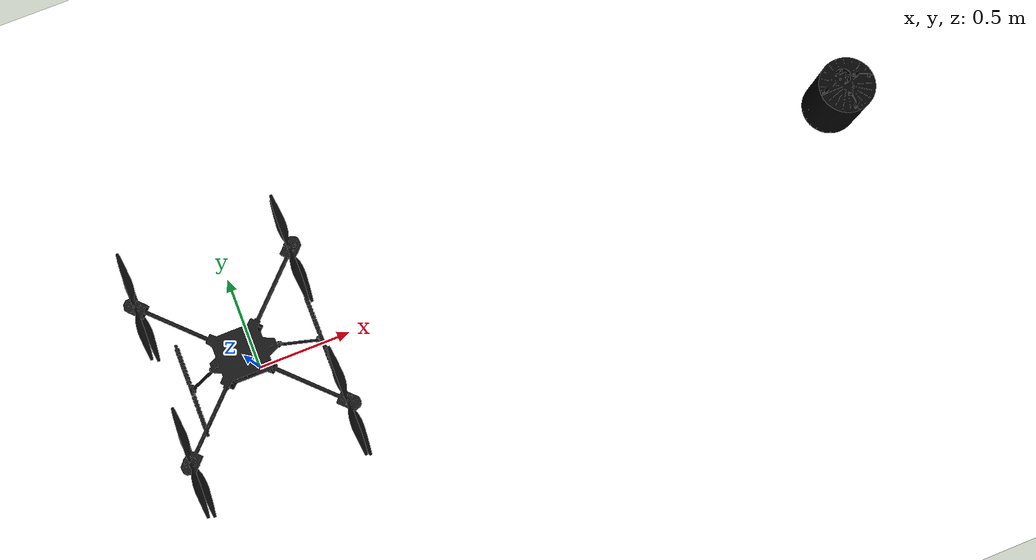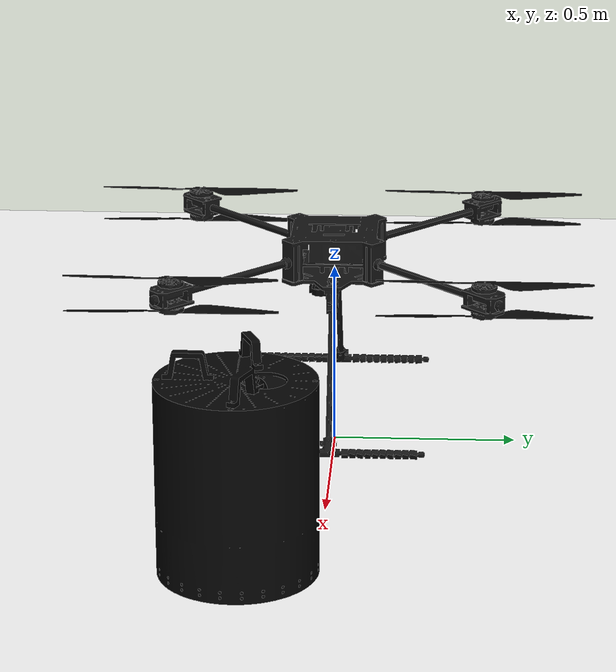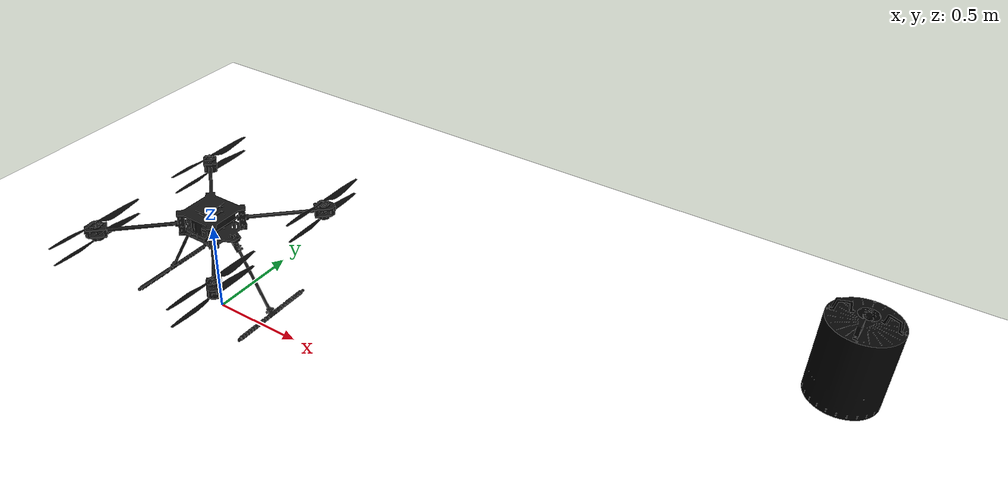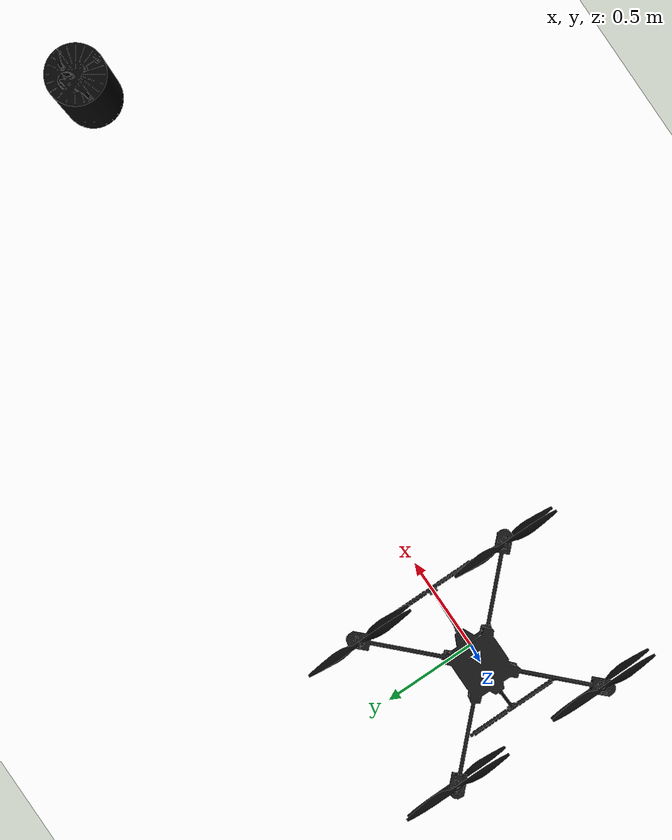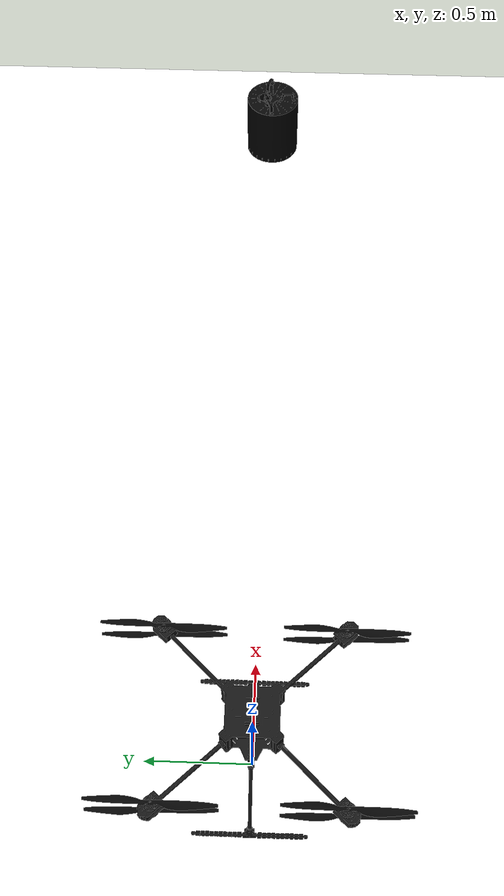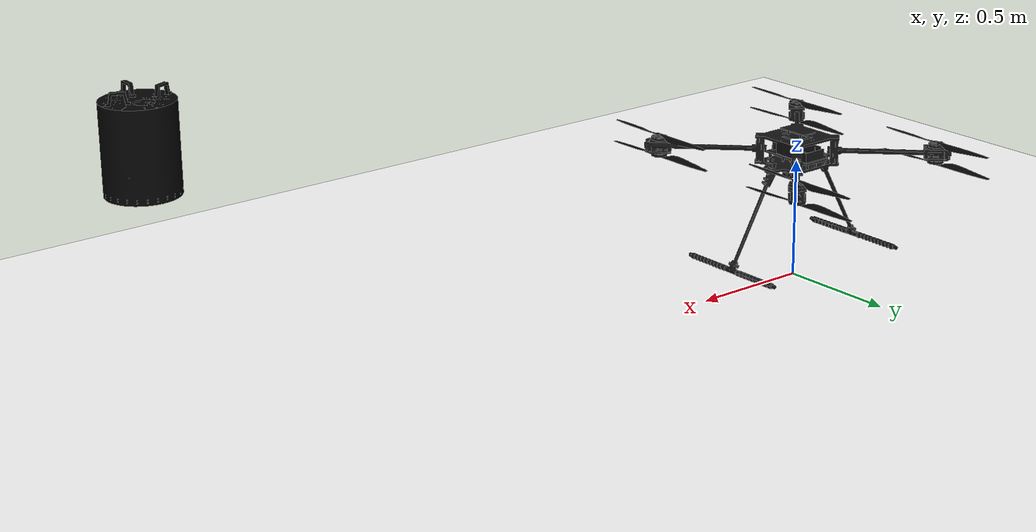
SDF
<?xml version="1.0" ?>
<sdf version="1.9">
  <world name="iris_runway">
    <physics name="1ms" type="ignore">
      <max_step_size>0.001</max_step_size>
      <real_time_factor>1.0</real_time_factor>
    </physics>

    <plugin filename="gz-sim-physics-system"
      name="gz::sim::systems::Physics">
    </plugin>
    <plugin
      filename="gz-sim-sensors-system"
      name="gz::sim::systems::Sensors">
      <render_engine>ogre2</render_engine>
    </plugin>
    <plugin filename="gz-sim-user-commands-system"
      name="gz::sim::systems::UserCommands">
    </plugin>
    <plugin filename="gz-sim-scene-broadcaster-system"
      name="gz::sim::systems::SceneBroadcaster">
    </plugin>
    <plugin filename="gz-sim-imu-system"
      name="gz::sim::systems::Imu">
    </plugin>
    <plugin filename="gz-sim-navsat-system"
      name="gz::sim::systems::NavSat">
    </plugin>

    <scene>
      <ambient>1.0 1.0 1.0</ambient>
      <background>0.8 0.8 0.8</background>
      <sky></sky>
    </scene>

    <spherical_coordinates>
      <latitude_deg>-35.363262</latitude_deg>
      <longitude_deg>149.165237</longitude_deg>
      <elevation>584</elevation>
      <heading_deg>0</heading_deg>
      <surface_model>EARTH_WGS84</surface_model>
    </spherical_coordinates>

    <light type="directional" name="sun">
      <cast_shadows>true</cast_shadows>
      <pose>0 0 10 0 0 0</pose>
      <diffuse>0.8 0.8 0.8 1</diffuse>
      <specular>0.8 0.8 0.8 1</specular>
      <attenuation>
        <range>1000</range>
        <constant>0.9</constant>
        <linear>0.01</linear>
        <quadratic>0.001</quadratic>
      </attenuation>
      <direction>-0.5 0.1 -0.9</direction>
    </light>

    <model name="axes">
      <static>1</static>
      <link name="link">
        <sensor name="navsat_sensor" type="navsat">
          <always_on>1</always_on>
          <update_rate>1</update_rate>
        </sensor>
      </link>
    </model>

    <!-- CHÃO DE GRAMA CUSTOMIZADO (Importado)      -->
    <include>
      <uri>model://grama</uri>
      <pose>0 0 0 0 0 0</pose>
    </include>

    <!-- ARMADILHA                                  -->

    <include>
      <uri>model://armadilha</uri>
      <pose>3 0 1.0 0 0 0</pose>
    </include>

    <!-- MEU DRONE                                  -->
    <include>
      <uri>model://drone_coaxial</uri>
      <pose>0 0 0.5 0 0 0</pose>
    </include>

  </world>
</sdf>

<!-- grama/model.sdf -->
<sdf version="1.9">
  <model name="chao_grama">
    <static>true</static>

    <link name="link">

      <collision name="collision">
        <geometry>
          <plane>
            <normal>0 0 1</normal>
            <size>1000 1000</size>
          </plane>
        </geometry>
        <surface>
          <friction>
            <ode>
              <mu>100</mu>
              <mu2>50</mu2>
            </ode>
          </friction>
        </surface>
      </collision>

      <visual name="visual">
        <pose>0 0 0 1.5708 0 0</pose>

        <geometry>
          <mesh>
            <uri>model://grama/grama.obj</uri>
          </mesh>
        </geometry>

        <material>
          <diffuse>1 1 1 1</diffuse>
          <pbr>
            <metal>
              <albedo_map>model://grama/color.jpg</albedo_map>
              <normal_map>model://grama/normal.png</normal_map>
              <roughness_map>model://grama/roughness.jpg</roughness_map>
            </metal>
          </pbr>
        </material>
      </visual>

    </link>
  </model>
</sdf>

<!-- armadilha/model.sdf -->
<sdf version="1.9">
  <model name="armadilha_alvo">
    <static>false</static>
    <link name="link">
      <inertial>
        <mass>4.81162</mass>
        <inertia>
          <ixx>0.294868</ixx><iyy>0.150069</iyy><izz>0.258855</izz>
          <ixy>0</ixy><ixz>0</ixz><iyz>0</iyz>
        </inertia>
      </inertial>

      <visual name="base_visual">
        <geometry>
          <mesh>
            <uri>model://armadilha/armadilha-corrigida-alcas.stl</uri>
            <scale>0.001 0.001 0.001</scale>
          </mesh>
        </geometry>
        <material>
          <ambient>0.015 0.015 0.015 1</ambient>
          <diffuse>0.02 0.02 0.02 1</diffuse>
          <specular>0.05 0.05 0.05 1</specular>
        </material>
      </visual>
      <collision name="base_collision">
        <geometry>
          <mesh>
            <uri>model://armadilha/armadilha-corrigida-alcas.stl</uri>
            <scale>0.001 0.001 0.001</scale>
          </mesh>
        </geometry>
        <surface>
          <friction><ode><mu>1.0</mu><mu2>1.0</mu2></ode></friction>
        </surface>
      </collision>
    </link>
  </model>
</sdf>

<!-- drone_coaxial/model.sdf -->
<sdf version="1.9">
  <model name="drone_coaxial">
    <pose>0 0 0.45 0 0 0</pose>

    <link name="base_link">
      <inertial>
        <pose>0 0 0 0 0 0</pose>
        <!-- Massa total: 6.300 kg da base + 8 rotores de 0.050 kg = 6.700 kg. -->
        <mass>6.30000</mass>
        <inertia>
          <ixx>0.903322</ixx><ixy>0</ixy><ixz>0</ixz>
          <iyy>0.903322</iyy><iyz>0</iyz><izz>1.569346</izz>
        </inertia>
      </inertial>

      <visual name="corpo_visual">
        <geometry>
          <mesh>
            <uri>model://drone_coaxial/meshes/montagem-drone-simplificado.stl</uri>
            <scale>0.001 0.001 0.001</scale>
          </mesh>
        </geometry>
        <material>
          <ambient>0.08 0.08 0.08 1</ambient>
          <diffuse>0.08 0.08 0.08 1</diffuse>
          <specular>0.1 0.1 0.1 1</specular>
        </material>
      </visual>

      <collision name="corpo_colisao">
        <geometry>
          <mesh>
            <uri>model://drone_coaxial/meshes/montagem-drone-simplificado.stl</uri>
            <scale>0.001 0.001 0.001</scale>
          </mesh>
        </geometry>
      </collision>

      <sensor name="imu_sensor" type="imu">
        <!-- O plugin ArduPilot usa corpo X-forward/Y-right/Z-down. -->
        <pose degrees="true">0 0 0 180 0 0</pose>
        <always_on>1</always_on>
        <update_rate>1000</update_rate>
      </sensor>
    </link>

    <!-- GIMBAL E CÂMERA SIYI A8 MINI (3 Eixos)         -->

    <!-- 1. Yaw Link -->
    <link name="gimbal_yaw_link">
      <pose>0.00057 -0.04216 -0.04551 0 0 0</pose>
      <inertial>
        <mass>0.030</mass>
        <inertia><ixx>0.00001</ixx><ixy>0</ixy><ixz>0</ixz><iyy>0.00001</iyy><iyz>0</iyz><izz>0.00001</izz></inertia>
      </inertial>
    </link>
    <joint name="gimbal_yaw_joint" type="revolute">
      <parent>base_link</parent>
      <child>gimbal_yaw_link</child>
      <axis><xyz>0 0 1</xyz><limit><lower>-2.7925</lower><upper>2.7925</upper></limit></axis>
    </joint>

    <!-- 2. Roll Link -->
    <link name="gimbal_roll_link">
      <pose>0.00057 -0.04216 -0.04551 0 0 0</pose>
      <inertial>
        <mass>0.030</mass>
        <inertia><ixx>0.00001</ixx><ixy>0</ixy><ixz>0</ixz><iyy>0.00001</iyy><iyz>0</iyz><izz>0.00001</izz></inertia>
      </inertial>
    </link>
    <joint name="gimbal_roll_joint" type="revolute">
      <parent>gimbal_yaw_link</parent>
      <child>gimbal_roll_link</child>
      <axis><xyz>1 0 0</xyz><limit><lower>-0.5236</lower><upper>0.5236</upper></limit></axis>
    </joint>

    <!-- 3. Pitch Link e Câmera -->
    <link name="camera_pitch_link">
      <pose>0.00057 -0.04216 -0.04551 0 0 0</pose>
      <inertial>
        <mass>0.035</mass>
        <inertia><ixx>0.00002</ixx><ixy>0</ixy><ixz>0</ixz><iyy>0.00002</iyy><iyz>0</iyz><izz>0.00002</izz></inertia>
      </inertial>

      <visual name="camera_visual">
        <geometry><mesh><uri>model://drone_coaxial/meshes/camera-corrigida.stl</uri><scale>0.001 0.001 0.001</scale></mesh></geometry>
        <material><ambient>0.02 0.02 0.02 1</ambient><diffuse>0.02 0.02 0.02 1</diffuse><specular>0.05 0.05 0.05 1</specular></material>
      </visual>

      <collision name="camera_collision">
        <!-- Bounding box exato da Siyi A8 Mini (55x55x70 mm) -->
        <geometry><box><size>0.055 0.055 0.070</size></box></geometry>
      </collision>

      <sensor name="siyi_a8_mini_sensor" type="camera">
        <!-- O "olho" da câmera fica exatamente na borda inferior da caixa -->
        <pose degrees="true">0 0 -0.035 0 90 0</pose>
        <camera>
          <horizontal_fov>1.4137</horizontal_fov>
          <image><width>4096</width><height>2160</height><format>R8G8B8</format></image>
          <clip><near>0.01</near><far>1000</far></clip>
        </camera>
        <always_on>1</always_on>
        <update_rate>30</update_rate>
        <visualize>true</visualize>
        <topic>camera/image</topic>
      </sensor>
    </link>
    <joint name="gimbal_pitch_joint" type="revolute">
      <parent>gimbal_roll_link</parent>
      <child>camera_pitch_link</child>
      <axis><xyz>0 1 0</xyz><limit><lower>-2.3562</lower><upper>0.7854</upper></limit></axis>
    </joint>

    <!-- Plugins de Força para o Gimbal -->
    <plugin filename="gz-sim-apply-joint-force-system" name="gz::sim::systems::ApplyJointForce"><joint_name>gimbal_yaw_joint</joint_name></plugin>
    <plugin filename="gz-sim-apply-joint-force-system" name="gz::sim::systems::ApplyJointForce"><joint_name>gimbal_roll_joint</joint_name></plugin>
    <plugin filename="gz-sim-apply-joint-force-system" name="gz::sim::systems::ApplyJointForce"><joint_name>gimbal_pitch_joint</joint_name></plugin>

    <!-- ROTORES DO DRONE                               -->

    <!-- BRAÇO 1 -->
    <link name="rotor_1_sup">
      <pose>0.40006 0.40476 0.09529 0 0 0</pose>
      <inertial>
        <mass>0.05</mass>
        <inertia>
          <ixx>0.0005</ixx>
          <ixy>0.0</ixy>
          <ixz>0.0</ixz>
          <iyy>0.0005</iyy>
          <iyz>0.0</iyz>
          <izz>0.0005</izz>
        </inertia>
      </inertial>
      <visual name="r1_sup_vis">
        <geometry>
          <mesh>
            <uri>model://drone_coaxial/meshes/helice-sup-simplificado.stl</uri>
            <scale>0.001 0.001 0.001</scale>
          </mesh>
        </geometry>
        <material>
          <ambient>0.02 0.02 0.02 1</ambient>
          <diffuse>0.02 0.02 0.02 1</diffuse>
          <specular>0.05 0.05 0.05 1</specular>
        </material>
      </visual>
    </link>
    <joint name="rotor_1_sup_joint" type="revolute">
      <child>rotor_1_sup</child>
      <parent>base_link</parent>
      <axis>
        <xyz>0 0 1</xyz>
      </axis>
    </joint>

    <link name="rotor_1_inf">
      <pose>0.40006 0.40476 0.00581 0 0 0</pose>
      <inertial>
        <mass>0.05</mass>
        <inertia>
          <ixx>0.0005</ixx>
          <ixy>0.0</ixy>
          <ixz>0.0</ixz>
          <iyy>0.0005</iyy>
          <iyz>0.0</iyz>
          <izz>0.0005</izz>
        </inertia>
      </inertial>
      <visual name="r1_inf_vis">
        <geometry>
          <mesh>
            <uri>model://drone_coaxial/meshes/helice-inf-simplificado.stl</uri>
            <scale>0.001 0.001 0.001</scale>
          </mesh>
        </geometry>
        <material>
          <ambient>0.02 0.02 0.02 1</ambient>
          <diffuse>0.02 0.02 0.02 1</diffuse>
          <specular>0.05 0.05 0.05 1</specular>
        </material>
      </visual>
    </link>
    <joint name="rotor_1_inf_joint" type="revolute">
      <child>rotor_1_inf</child>
      <parent>base_link</parent>
      <axis>
        <xyz>0 0 1</xyz>
      </axis>
    </joint>

    <!-- BRAÇO 2 -->
    <link name="rotor_2_sup">
      <pose>0.40006 -0.40476 0.09529 0 0 0</pose>
      <inertial>
        <mass>0.05</mass>
        <inertia>
          <ixx>0.0005</ixx>
          <ixy>0.0</ixy>
          <ixz>0.0</ixz>
          <iyy>0.0005</iyy>
          <iyz>0.0</iyz>
          <izz>0.0005</izz>
        </inertia>
      </inertial>
      <visual name="r2_sup_vis">
        <geometry>
          <mesh>
            <uri>model://drone_coaxial/meshes/helice-sup-simplificado.stl</uri>
            <scale>0.001 0.001 0.001</scale>
          </mesh>
        </geometry>
        <material>
          <ambient>0.02 0.02 0.02 1</ambient>
          <diffuse>0.02 0.02 0.02 1</diffuse>
          <specular>0.05 0.05 0.05 1</specular>
        </material>
      </visual>
    </link>
    <joint name="rotor_2_sup_joint" type="revolute">
      <child>rotor_2_sup</child>
      <parent>base_link</parent>
      <axis>
        <xyz>0 0 1</xyz>
      </axis>
    </joint>

    <link name="rotor_2_inf">
      <pose>0.40006 -0.40476 0.00581 0 0 0</pose>
      <inertial>
        <mass>0.05</mass>
        <inertia>
          <ixx>0.0005</ixx>
          <ixy>0.0</ixy>
          <ixz>0.0</ixz>
          <iyy>0.0005</iyy>
          <iyz>0.0</iyz>
          <izz>0.0005</izz>
        </inertia>
      </inertial>
      <visual name="r2_inf_vis">
        <geometry>
          <mesh>
            <uri>model://drone_coaxial/meshes/helice-inf-simplificado.stl</uri>
            <scale>0.001 0.001 0.001</scale>
          </mesh>
        </geometry>
        <material>
          <ambient>0.02 0.02 0.02 1</ambient>
          <diffuse>0.02 0.02 0.02 1</diffuse>
          <specular>0.05 0.05 0.05 1</specular>
        </material>
      </visual>
    </link>
    <joint name="rotor_2_inf_joint" type="revolute">
      <child>rotor_2_inf</child>
      <parent>base_link</parent>
      <axis>
        <xyz>0 0 1</xyz>
      </axis>
    </joint>

    <!-- BRAÇO 3 -->
    <link name="rotor_3_sup">
      <pose>-0.40006 0.40476 0.09529 0 0 0</pose>
      <inertial>
        <mass>0.05</mass>
        <inertia>
          <ixx>0.0005</ixx>
          <ixy>0.0</ixy>
          <ixz>0.0</ixz>
          <iyy>0.0005</iyy>
          <iyz>0.0</iyz>
          <izz>0.0005</izz>
        </inertia>
      </inertial>
      <visual name="r3_sup_vis">
        <geometry>
          <mesh>
            <uri>model://drone_coaxial/meshes/helice-sup-simplificado.stl</uri>
            <scale>0.001 0.001 0.001</scale>
          </mesh>
        </geometry>
        <material>
          <ambient>0.02 0.02 0.02 1</ambient>
          <diffuse>0.02 0.02 0.02 1</diffuse>
          <specular>0.05 0.05 0.05 1</specular>
        </material>
      </visual>
    </link>
    <joint name="rotor_3_sup_joint" type="revolute">
      <child>rotor_3_sup</child>
      <parent>base_link</parent>
      <axis>
        <xyz>0 0 1</xyz>
      </axis>
    </joint>

    <link name="rotor_3_inf">
      <pose>-0.40006 0.40476 0.00581 0 0 0</pose>
      <inertial>
        <mass>0.05</mass>
        <inertia>
          <ixx>0.0005</ixx>
          <ixy>0.0</ixy>
          <ixz>0.0</ixz>
          <iyy>0.0005</iyy>
          <iyz>0.0</iyz>
          <izz>0.0005</izz>
        </inertia>
      </inertial>
      <visual name="r3_inf_vis">
        <geometry>
          <mesh>
            <uri>model://drone_coaxial/meshes/helice-inf-simplificado.stl</uri>
            <scale>0.001 0.001 0.001</scale>
          </mesh>
        </geometry>
        <material>
          <ambient>0.02 0.02 0.02 1</ambient>
          <diffuse>0.02 0.02 0.02 1</diffuse>
          <specular>0.05 0.05 0.05 1</specular>
        </material>
      </visual>
    </link>
    <joint name="rotor_3_inf_joint" type="revolute">
      <child>rotor_3_inf</child>
      <parent>base_link</parent>
      <axis>
        <xyz>0 0 1</xyz>
      </axis>
    </joint>

    <!-- BRAÇO 4 -->
    <link name="rotor_4_sup">
      <pose>-0.40006 -0.40476 0.09529 0 0 0</pose>
      <inertial>
        <mass>0.05</mass>
        <inertia>
          <ixx>0.0005</ixx>
          <ixy>0.0</ixy>
          <ixz>0.0</ixz>
          <iyy>0.0005</iyy>
          <iyz>0.0</iyz>
          <izz>0.0005</izz>
        </inertia>
      </inertial>
      <visual name="r4_sup_vis">
        <geometry>
          <mesh>
            <uri>model://drone_coaxial/meshes/helice-sup-simplificado.stl</uri>
            <scale>0.001 0.001 0.001</scale>
          </mesh>
        </geometry>
        <material>
          <ambient>0.02 0.02 0.02 1</ambient>
          <diffuse>0.02 0.02 0.02 1</diffuse>
          <specular>0.05 0.05 0.05 1</specular>
        </material>
      </visual>
    </link>
    <joint name="rotor_4_sup_joint" type="revolute">
      <child>rotor_4_sup</child>
      <parent>base_link</parent>
      <axis>
        <xyz>0 0 1</xyz>
      </axis>
    </joint>

    <link name="rotor_4_inf">
      <pose>-0.40006 -0.40476 0.00581 0 0 0</pose>
      <inertial>
        <mass>0.05</mass>
        <inertia>
          <ixx>0.0005</ixx>
          <ixy>0.0</ixy>
          <ixz>0.0</ixz>
          <iyy>0.0005</iyy>
          <iyz>0.0</iyz>
          <izz>0.0005</izz>
        </inertia>
      </inertial>
      <visual name="r4_inf_vis">
        <geometry>
          <mesh>
            <uri>model://drone_coaxial/meshes/helice-inf-simplificado.stl</uri>
            <scale>0.001 0.001 0.001</scale>
          </mesh>
        </geometry>
        <material>
          <ambient>0.02 0.02 0.02 1</ambient>
          <diffuse>0.02 0.02 0.02 1</diffuse>
          <specular>0.05 0.05 0.05 1</specular>
        </material>
      </visual>
    </link>
    <joint name="rotor_4_inf_joint" type="revolute">
      <child>rotor_4_inf</child>
      <parent>base_link</parent>
      <axis>
        <xyz>0 0 1</xyz>
      </axis>
    </joint>

    <!-- TENDÕES (Obrigatório para o Gazebo aceitar força na joint) -->
    <plugin filename="gz-sim-apply-joint-force-system" name="gz::sim::systems::ApplyJointForce"><joint_name>rotor_1_sup_joint</joint_name></plugin>
    <plugin filename="gz-sim-apply-joint-force-system" name="gz::sim::systems::ApplyJointForce"><joint_name>rotor_1_inf_joint</joint_name></plugin>
    <plugin filename="gz-sim-apply-joint-force-system" name="gz::sim::systems::ApplyJointForce"><joint_name>rotor_2_sup_joint</joint_name></plugin>
    <plugin filename="gz-sim-apply-joint-force-system" name="gz::sim::systems::ApplyJointForce"><joint_name>rotor_2_inf_joint</joint_name></plugin>
    <plugin filename="gz-sim-apply-joint-force-system" name="gz::sim::systems::ApplyJointForce"><joint_name>rotor_3_sup_joint</joint_name></plugin>
    <plugin filename="gz-sim-apply-joint-force-system" name="gz::sim::systems::ApplyJointForce"><joint_name>rotor_3_inf_joint</joint_name></plugin>
    <plugin filename="gz-sim-apply-joint-force-system" name="gz::sim::systems::ApplyJointForce"><joint_name>rotor_4_sup_joint</joint_name></plugin>
    <plugin filename="gz-sim-apply-joint-force-system" name="gz::sim::systems::ApplyJointForce"><joint_name>rotor_4_inf_joint</joint_name></plugin>

    <!-- ================= BRAÇO 1 (Frente-Esquerda) ================= -->
    <!-- SUP: CW -->
    <plugin filename="gz-sim-lift-drag-system" name="gz::sim::systems::LiftDrag">
      <a0>0.3</a0><alpha_stall>1.4</alpha_stall><cla>4.25</cla><cda>0.56097</cda><cma>0.0</cma><area>0.0037982</area><air_density>1.2041</air_density>
      <cp>0.18 0 0</cp><forward>0 -1 0</forward><upward>0 0 1</upward><link_name>rotor_1_sup</link_name>
    </plugin>
    <plugin filename="gz-sim-lift-drag-system" name="gz::sim::systems::LiftDrag">
      <a0>0.3</a0><alpha_stall>1.4</alpha_stall><cla>4.25</cla><cda>0.56097</cda><cma>0.0</cma><area>0.0037982</area><air_density>1.2041</air_density>
      <cp>-0.18 0 0</cp><forward>0 1 0</forward><upward>0 0 1</upward><link_name>rotor_1_sup</link_name>
    </plugin>
    <!-- INF: CCW -->
    <plugin filename="gz-sim-lift-drag-system" name="gz::sim::systems::LiftDrag">
      <a0>0.3</a0><alpha_stall>1.4</alpha_stall><cla>4.25</cla><cda>0.56097</cda><cma>0.0</cma><area>0.0037982</area><air_density>1.2041</air_density>
      <cp>0.18 0 0</cp><forward>0 1 0</forward><upward>0 0 1</upward><link_name>rotor_1_inf</link_name>
    </plugin>
    <plugin filename="gz-sim-lift-drag-system" name="gz::sim::systems::LiftDrag">
      <a0>0.3</a0><alpha_stall>1.4</alpha_stall><cla>4.25</cla><cda>0.56097</cda><cma>0.0</cma><area>0.0037982</area><air_density>1.2041</air_density>
      <cp>-0.18 0 0</cp><forward>0 -1 0</forward><upward>0 0 1</upward><link_name>rotor_1_inf</link_name>
    </plugin>

    <!-- ================= BRAÇO 2 (Frente-Direita) ================= -->
    <!-- SUP: CCW -->
    <plugin filename="gz-sim-lift-drag-system" name="gz::sim::systems::LiftDrag">
      <a0>0.3</a0><alpha_stall>1.4</alpha_stall><cla>4.25</cla><cda>0.56097</cda><cma>0.0</cma><area>0.0037982</area><air_density>1.2041</air_density>
      <cp>0.18 0 0</cp><forward>0 1 0</forward><upward>0 0 1</upward><link_name>rotor_2_sup</link_name>
    </plugin>
    <plugin filename="gz-sim-lift-drag-system" name="gz::sim::systems::LiftDrag">
      <a0>0.3</a0><alpha_stall>1.4</alpha_stall><cla>4.25</cla><cda>0.56097</cda><cma>0.0</cma><area>0.0037982</area><air_density>1.2041</air_density>
      <cp>-0.18 0 0</cp><forward>0 -1 0</forward><upward>0 0 1</upward><link_name>rotor_2_sup</link_name>
    </plugin>
    <!-- INF: CW -->
    <plugin filename="gz-sim-lift-drag-system" name="gz::sim::systems::LiftDrag">
      <a0>0.3</a0><alpha_stall>1.4</alpha_stall><cla>4.25</cla><cda>0.56097</cda><cma>0.0</cma><area>0.0037982</area><air_density>1.2041</air_density>
      <cp>0.18 0 0</cp><forward>0 -1 0</forward><upward>0 0 1</upward><link_name>rotor_2_inf</link_name>
    </plugin>
    <plugin filename="gz-sim-lift-drag-system" name="gz::sim::systems::LiftDrag">
      <a0>0.3</a0><alpha_stall>1.4</alpha_stall><cla>4.25</cla><cda>0.56097</cda><cma>0.0</cma><area>0.0037982</area><air_density>1.2041</air_density>
      <cp>-0.18 0 0</cp><forward>0 1 0</forward><upward>0 0 1</upward><link_name>rotor_2_inf</link_name>
    </plugin>

    <!-- ================= BRAÇO 3 (Atrás-Esquerda) ================= -->
    <!-- SUP: CCW -->
    <plugin filename="gz-sim-lift-drag-system" name="gz::sim::systems::LiftDrag">
      <a0>0.3</a0><alpha_stall>1.4</alpha_stall><cla>4.25</cla><cda>0.56097</cda><cma>0.0</cma><area>0.0037982</area><air_density>1.2041</air_density>
      <cp>0.18 0 0</cp><forward>0 1 0</forward><upward>0 0 1</upward><link_name>rotor_3_sup</link_name>
    </plugin>
    <plugin filename="gz-sim-lift-drag-system" name="gz::sim::systems::LiftDrag">
      <a0>0.3</a0><alpha_stall>1.4</alpha_stall><cla>4.25</cla><cda>0.56097</cda><cma>0.0</cma><area>0.0037982</area><air_density>1.2041</air_density>
      <cp>-0.18 0 0</cp><forward>0 -1 0</forward><upward>0 0 1</upward><link_name>rotor_3_sup</link_name>
    </plugin>
    <!-- INF: CW -->
    <plugin filename="gz-sim-lift-drag-system" name="gz::sim::systems::LiftDrag">
      <a0>0.3</a0><alpha_stall>1.4</alpha_stall><cla>4.25</cla><cda>0.56097</cda><cma>0.0</cma><area>0.0037982</area><air_density>1.2041</air_density>
      <cp>0.18 0 0</cp><forward>0 -1 0</forward><upward>0 0 1</upward><link_name>rotor_3_inf</link_name>
    </plugin>
    <plugin filename="gz-sim-lift-drag-system" name="gz::sim::systems::LiftDrag">
      <a0>0.3</a0><alpha_stall>1.4</alpha_stall><cla>4.25</cla><cda>0.56097</cda><cma>0.0</cma><area>0.0037982</area><air_density>1.2041</air_density>
      <cp>-0.18 0 0</cp><forward>0 1 0</forward><upward>0 0 1</upward><link_name>rotor_3_inf</link_name>
    </plugin>

    <!-- ================= BRAÇO 4 (Atrás-Direita) ================= -->
    <!-- SUP: CW -->
    <plugin filename="gz-sim-lift-drag-system" name="gz::sim::systems::LiftDrag">
      <a0>0.3</a0><alpha_stall>1.4</alpha_stall><cla>4.25</cla><cda>0.56097</cda><cma>0.0</cma><area>0.0037982</area><air_density>1.2041</air_density>
      <cp>0.18 0 0</cp><forward>0 -1 0</forward><upward>0 0 1</upward><link_name>rotor_4_sup</link_name>
    </plugin>
    <plugin filename="gz-sim-lift-drag-system" name="gz::sim::systems::LiftDrag">
      <a0>0.3</a0><alpha_stall>1.4</alpha_stall><cla>4.25</cla><cda>0.56097</cda><cma>0.0</cma><area>0.0037982</area><air_density>1.2041</air_density>
      <cp>-0.18 0 0</cp><forward>0 1 0</forward><upward>0 0 1</upward><link_name>rotor_4_sup</link_name>
    </plugin>
    <!-- INF: CCW -->
    <plugin filename="gz-sim-lift-drag-system" name="gz::sim::systems::LiftDrag">
      <a0>0.3</a0><alpha_stall>1.4</alpha_stall><cla>4.25</cla><cda>0.56097</cda><cma>0.0</cma><area>0.0037982</area><air_density>1.2041</air_density>
      <cp>0.18 0 0</cp><forward>0 1 0</forward><upward>0 0 1</upward><link_name>rotor_4_inf</link_name>
    </plugin>
    <plugin filename="gz-sim-lift-drag-system" name="gz::sim::systems::LiftDrag">
      <a0>0.3</a0><alpha_stall>1.4</alpha_stall><cla>4.25</cla><cda>0.56097</cda><cma>0.0</cma><area>0.0037982</area><air_density>1.2041</air_density>
      <cp>-0.18 0 0</cp><forward>0 -1 0</forward><upward>0 0 1</upward><link_name>rotor_4_inf</link_name>
    </plugin>

    <!-- ArduPilot OctaQuad X. 5456 rpm = 571.35 rad/s no ponto de bancada
         de 100%; torque do eixo limitado pouco acima dos 1.49 Nm medidos. -->
    <plugin name="ArduPilotPlugin" filename="ArduPilotPlugin">
      <fdm_addr>127.0.0.1</fdm_addr>
      <fdm_port_in>9002</fdm_port_in>
      <connectionTimeoutMaxCount>5</connectionTimeoutMaxCount>
      <lock_step>1</lock_step>
      <no_time_sync>1</no_time_sync>
      <have_32_channels>0</have_32_channels>

      <modelXYZToAirplaneXForwardZDown degrees="true">0 0 0 180 0 0</modelXYZToAirplaneXForwardZDown>
      <!-- Gazebo usa ENU; o SITL espera NED. O yaw de 90 graus alinha
           corretamente os eixos X/Y, como no modelo oficial Iris. -->
      <gazeboXYZToNED degrees="true">0 0 0 180 0 90</gazeboXYZToNED>
      <imuName>imu_sensor</imuName>

      <!-- C0: frente-direita superior, CCW -->
      <control channel="0"><jointName>rotor_2_sup_joint</jointName><useForce>1</useForce><multiplier>571.35</multiplier><offset>0</offset><servo_min>1000</servo_min><servo_max>2000</servo_max><type>VELOCITY</type><p_gain>0.1</p_gain><i_gain>0</i_gain><d_gain>0</d_gain><i_max>0</i_max><i_min>0</i_min><cmd_max>1.6</cmd_max><cmd_min>-1.6</cmd_min><rotorVelocitySlowdownSim>1</rotorVelocitySlowdownSim></control>

      <!-- C1: frente-esquerda superior, CW -->
      <control channel="1"><jointName>rotor_1_sup_joint</jointName><useForce>1</useForce><multiplier>-571.35</multiplier><offset>0</offset><servo_min>1000</servo_min><servo_max>2000</servo_max><type>VELOCITY</type><p_gain>0.1</p_gain><i_gain>0</i_gain><d_gain>0</d_gain><i_max>0</i_max><i_min>0</i_min><cmd_max>1.6</cmd_max><cmd_min>-1.6</cmd_min><rotorVelocitySlowdownSim>1</rotorVelocitySlowdownSim></control>

      <!-- C2: traseira-esquerda superior, CCW -->
      <control channel="2"><jointName>rotor_3_sup_joint</jointName><useForce>1</useForce><multiplier>571.35</multiplier><offset>0</offset><servo_min>1000</servo_min><servo_max>2000</servo_max><type>VELOCITY</type><p_gain>0.1</p_gain><i_gain>0</i_gain><d_gain>0</d_gain><i_max>0</i_max><i_min>0</i_min><cmd_max>1.6</cmd_max><cmd_min>-1.6</cmd_min><rotorVelocitySlowdownSim>1</rotorVelocitySlowdownSim></control>

      <!-- C3: traseira-direita superior, CW -->
      <control channel="3"><jointName>rotor_4_sup_joint</jointName><useForce>1</useForce><multiplier>-571.35</multiplier><offset>0</offset><servo_min>1000</servo_min><servo_max>2000</servo_max><type>VELOCITY</type><p_gain>0.1</p_gain><i_gain>0</i_gain><d_gain>0</d_gain><i_max>0</i_max><i_min>0</i_min><cmd_max>1.6</cmd_max><cmd_min>-1.6</cmd_min><rotorVelocitySlowdownSim>1</rotorVelocitySlowdownSim></control>

      <!-- C4: frente-esquerda inferior, CCW -->
      <control channel="4"><jointName>rotor_1_inf_joint</jointName><useForce>1</useForce><multiplier>571.35</multiplier><offset>0</offset><servo_min>1000</servo_min><servo_max>2000</servo_max><type>VELOCITY</type><p_gain>0.1</p_gain><i_gain>0</i_gain><d_gain>0</d_gain><i_max>0</i_max><i_min>0</i_min><cmd_max>1.6</cmd_max><cmd_min>-1.6</cmd_min><rotorVelocitySlowdownSim>1</rotorVelocitySlowdownSim></control>

      <!-- C5: frente-direita inferior, CW -->
      <control channel="5"><jointName>rotor_2_inf_joint</jointName><useForce>1</useForce><multiplier>-571.35</multiplier><offset>0</offset><servo_min>1000</servo_min><servo_max>2000</servo_max><type>VELOCITY</type><p_gain>0.1</p_gain><i_gain>0</i_gain><d_gain>0</d_gain><i_max>0</i_max><i_min>0</i_min><cmd_max>1.6</cmd_max><cmd_min>-1.6</cmd_min><rotorVelocitySlowdownSim>1</rotorVelocitySlowdownSim></control>

      <!-- C6: traseira-direita inferior, CCW -->
      <control channel="6"><jointName>rotor_4_inf_joint</jointName><useForce>1</useForce><multiplier>571.35</multiplier><offset>0</offset><servo_min>1000</servo_min><servo_max>2000</servo_max><type>VELOCITY</type><p_gain>0.1</p_gain><i_gain>0</i_gain><d_gain>0</d_gain><i_max>0</i_max><i_min>0</i_min><cmd_max>1.6</cmd_max><cmd_min>-1.6</cmd_min><rotorVelocitySlowdownSim>1</rotorVelocitySlowdownSim></control>

      <!-- C7: traseira-esquerda inferior, CW -->
      <control channel="7"><jointName>rotor_3_inf_joint</jointName><useForce>1</useForce><multiplier>-571.35</multiplier><offset>0</offset><servo_min>1000</servo_min><servo_max>2000</servo_max><type>VELOCITY</type><p_gain>0.1</p_gain><i_gain>0</i_gain><d_gain>0</d_gain><i_max>0</i_max><i_min>0</i_min><cmd_max>1.6</cmd_max><cmd_min>-1.6</cmd_min><rotorVelocitySlowdownSim>1</rotorVelocitySlowdownSim></control>
    </plugin>
  </model>
</sdf>
